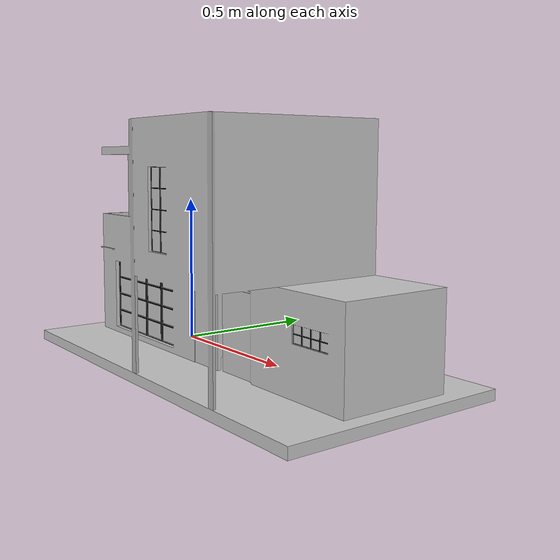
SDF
<?xml version="1.0"?>
<sdf version="1.9">
  <model name="House">
    <static>true</static>
    <link name="link">
      <collision name="collision">
        <geometry>
          <mesh>
            <scale>0.08 0.08 0.08</scale>
            <uri>model://Circuito/House/meshes/House_Model_.dae</uri>
          </mesh>
        </geometry>
      </collision>
      <visual name="house">
        <geometry>
          <mesh>
            <scale>0.08 0.08 0.08</scale>
            <uri>model://Circuito/House/meshes/House_Model_.dae</uri>
          </mesh>
        </geometry>
      </visual>
    </link>
  </model>
</sdf>
